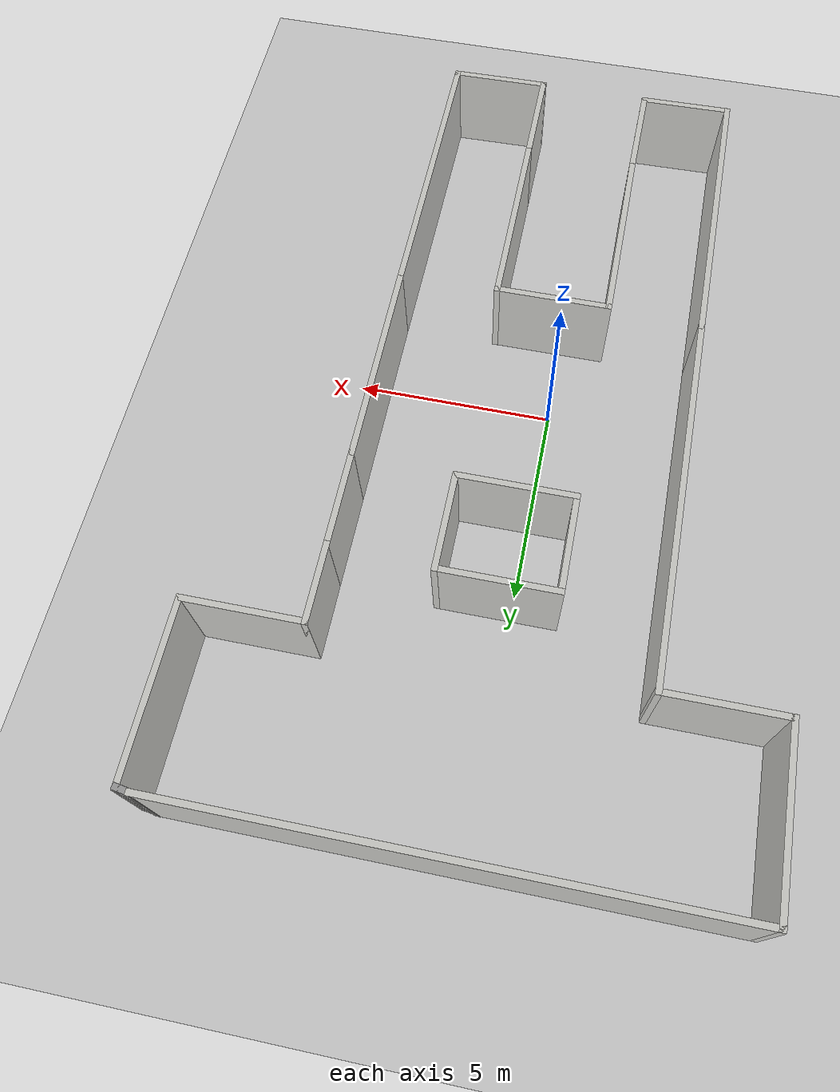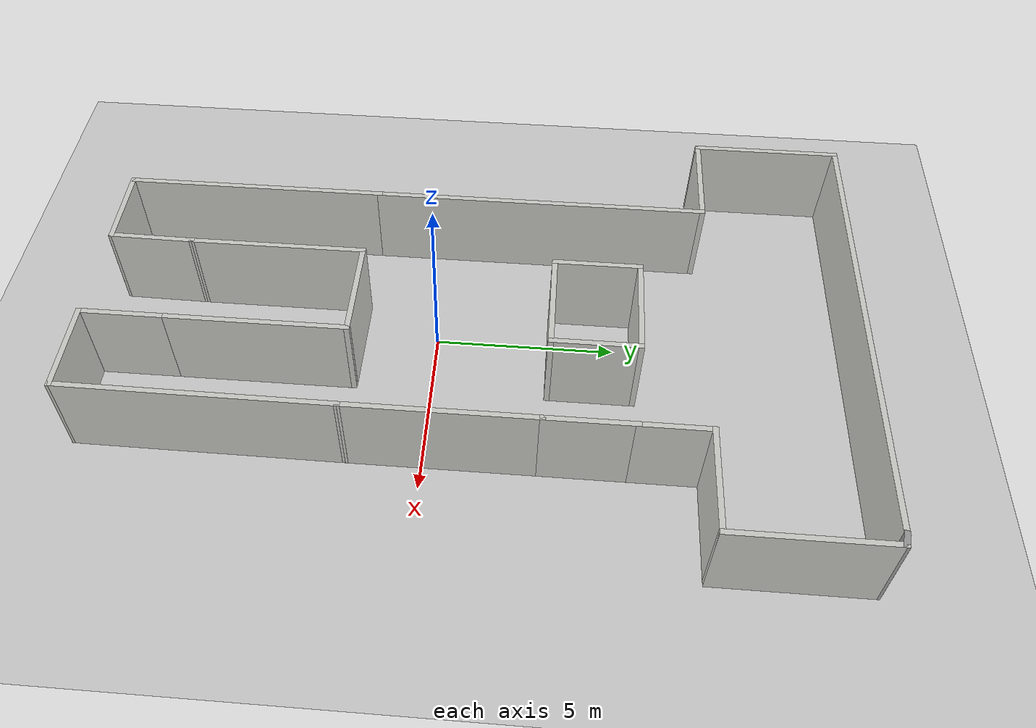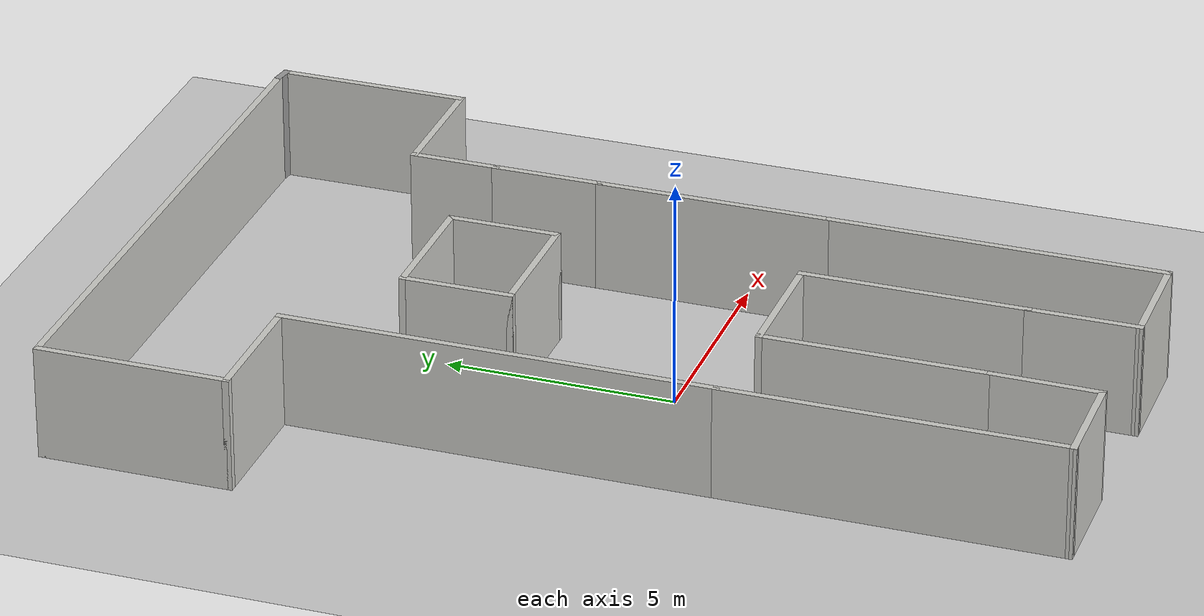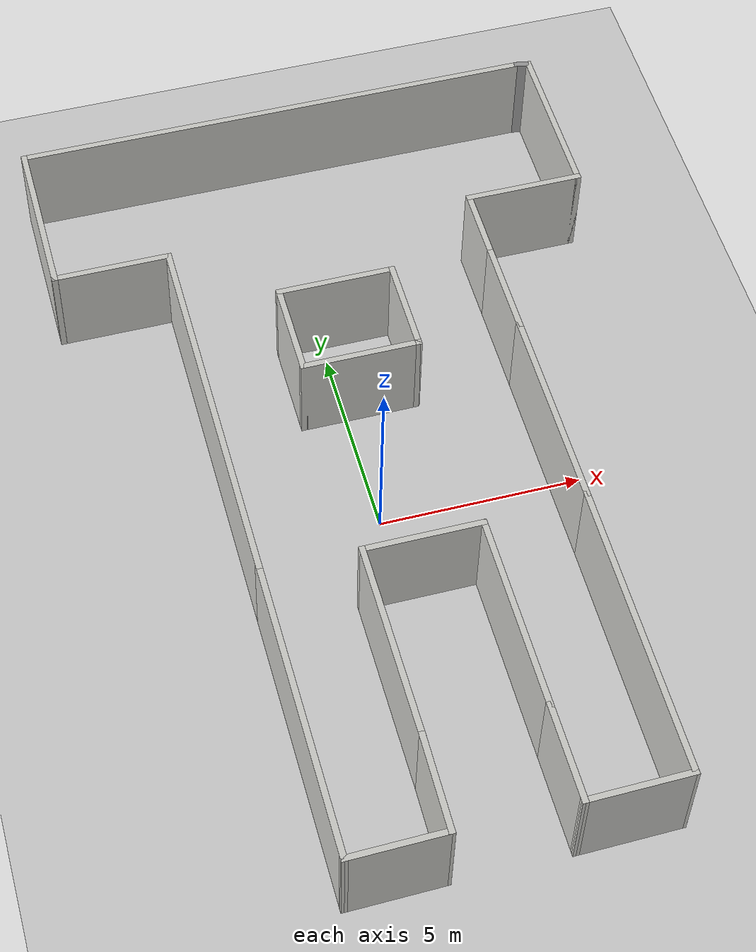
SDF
<sdf version="1.7">
 <world name="default">
  <light name="sun" type="directional">
   <pose>0 0 10 0 -0 0</pose>
   <diffuse>0.8 0.8 0.8 1</diffuse>
   <specular>0.2 0.2 0.2 1</specular>
   <attenuation>
    <range>1000</range>
    <constant>0.9</constant>
    <linear>0.01</linear>
    <quadratic>0.001</quadratic>
   </attenuation>
   <direction>-0.5 0.1 -0.9</direction>
   <spot><inner_angle>0</inner_angle><outer_angle>0</outer_angle><falloff>0</falloff></spot>
  </light>
  <model name="ground_plane">
   <static>1</static>
   <link name="link">
    <collision name="collision">
     <geometry><plane><normal>0 0 1</normal><size>100 100</size></plane></geometry>
     <surface>
      <contact><collide_bitmask>65535</collide_bitmask></contact>
      <friction><ode><mu>100</mu><mu2>50</mu2></ode></friction>
     </surface>
    </collision>
    <visual name="visual">
     <cast_shadows>0</cast_shadows>
     <geometry><plane><normal>0 0 1</normal><size>100 100</size></plane></geometry>
     <material>
      <script><uri>file://media/materials/scripts/gazebo.material</uri><name>Gazebo/Grey</name></script>
     </material>
    </visual>
   </link>
  </model>
  <gravity>0 0 -9.8</gravity>
  <magnetic_field>6e-06 2.3e-05 -4.2e-05</magnetic_field>
  <atmosphere type="adiabatic"/>
  <physics type="ode">
   <max_step_size>0.001</max_step_size>
   <real_time_factor>1</real_time_factor>
   <real_time_update_rate>1000</real_time_update_rate>
  </physics>
  <scene><ambient>0.4 0.4 0.4 1</ambient><background>0.7 0.7 0.7 1</background><shadows>1</shadows></scene>
  <audio><device>default</device></audio>
  <spherical_coordinates>
   <surface_model>EARTH_WGS84</surface_model>
   <latitude_deg>0</latitude_deg>
   <longitude_deg>0</longitude_deg>
   <elevation>0</elevation>
   <heading_deg>0</heading_deg>
  </spherical_coordinates>
  <model name="UPIITA">
   <pose>0.450283 1.05834 0 0 -0 0</pose>
   <link name="Wall_0">
    <collision name="Wall_0_Collision">
     <geometry><box><size>3 0.15 2.5</size></box></geometry>
     <pose>0 0 1.25 0 -0 0</pose>
    </collision>
    <visual name="Wall_0_Visual">
     <pose>0 0 1.25 0 -0 0</pose>
     <geometry><box><size>3 0.15 2.5</size></box></geometry>
     <material>
      <script><uri>file://media/materials/scripts/gazebo.material</uri><name>Gazebo/CeilingTiled</name></script>
      <ambient>1 1 1 1</ambient>
     </material>
     <meta><layer>0</layer></meta>
    </visual>
    <pose>-0.080655 -3.20509 0 0 -0 3.14159</pose>
   </link>
   <link name="Wall_1">
    <collision name="Wall_1_Collision">
     <geometry><box><size>5 0.15 2.5</size></box></geometry>
     <pose>0 0 1.25 0 -0 0</pose>
    </collision>
    <visual name="Wall_1_Visual">
     <pose>0 0 1.25 0 -0 0</pose>
     <geometry><box><size>5 0.15 2.5</size></box></geometry>
     <material>
      <script><uri>file://media/materials/scripts/gazebo.material</uri><name>Gazebo/CeilingTiled</name></script>
      <ambient>1 1 1 1</ambient>
     </material>
     <meta><layer>0</layer></meta>
    </visual>
    <pose>-1.50565 -5.63009 0 0 -0 -1.5708</pose>
   </link>
   <link name="Wall_12">
    <collision name="Wall_12_Collision">
     <geometry><box><size>2.46528 0.15 2.5</size></box></geometry>
     <pose>0 0 1.25 0 -0 0</pose>
    </collision>
    <visual name="Wall_12_Visual">
     <pose>0 0 1.25 0 -0 0</pose>
     <geometry><box><size>2.46528 0.15 2.5</size></box></geometry>
     <material>
      <script><uri>file://media/materials/scripts/gazebo.material</uri><name>Gazebo/CeilingTiled</name></script>
      <ambient>1 1 1 1</ambient>
     </material>
     <meta><layer>0</layer></meta>
    </visual>
    <pose>-2.69814 -10.3876 0 0 -0 -3.12648</pose>
   </link>
   <link name="Wall_13">
    <collision name="Wall_13_Collision">
     <geometry><box><size>7.5 0.15 2.5</size></box></geometry>
     <pose>0 0 1.25 0 -0 0</pose>
    </collision>
    <visual name="Wall_13_Visual">
     <pose>0 0 1.25 0 -0 0</pose>
     <geometry><box><size>7.5 0.15 2.5</size></box></geometry>
     <material>
      <script><uri>file://media/materials/scripts/gazebo.material</uri><name>Gazebo/CeilingTiled</name></script>
      <ambient>1 1 1 1</ambient>
     </material>
     <meta><layer>0</layer></meta>
    </visual>
    <pose>-3.85566 -6.73009 0 0 -0 1.5708</pose>
   </link>
   <link name="Wall_17">
    <collision name="Wall_17_Collision">
     <geometry><box><size>7.4651 0.15 2.5</size></box></geometry>
     <pose>0 0 1.25 0 -0 0</pose>
    </collision>
    <visual name="Wall_17_Visual">
     <pose>0 0 1.25 0 -0 0</pose>
     <geometry><box><size>7.4651 0.15 2.5</size></box></geometry>
     <material>
      <script><uri>file://media/materials/scripts/gazebo.material</uri><name>Gazebo/CeilingTiled</name></script>
      <ambient>1 1 1 1</ambient>
     </material>
     <meta><layer>0</layer></meta>
    </visual>
    <pose>3.82686 -6.7126 0 0 -0 1.56601</pose>
   </link>
   <link name="Wall_23">
    <collision name="Wall_23_Collision">
     <geometry><box><size>3 0.15 2.5</size></box></geometry>
     <pose>0 0 1.25 0 -0 0</pose>
    </collision>
    <visual name="Wall_23_Visual">
     <pose>0 0 1.25 0 -0 0</pose>
     <geometry><box><size>3 0.15 2.5</size></box></geometry>
     <material>
      <script><uri>file://media/materials/scripts/gazebo.material</uri><name>Gazebo/CeilingTiled</name></script>
      <ambient>1 1 1 1</ambient>
     </material>
     <meta><layer>0</layer></meta>
    </visual>
    <pose>-0.080655 2.14491 0 0 -0 0</pose>
   </link>
   <link name="Wall_24">
    <collision name="Wall_24_Collision">
     <geometry><box><size>2.5 0.15 2.5</size></box></geometry>
     <pose>0 0 1.25 0 -0 0</pose>
    </collision>
    <visual name="Wall_24_Visual">
     <pose>0 0 1.25 0 -0 0</pose>
     <geometry><box><size>2.5 0.15 2.5</size></box></geometry>
     <material>
      <script><uri>file://media/materials/scripts/gazebo.material</uri><name>Gazebo/CeilingTiled</name></script>
      <ambient>1 1 1 1</ambient>
     </material>
     <meta><layer>0</layer></meta>
    </visual>
    <pose>1.34434 3.31991 0 0 -0 1.5708</pose>
   </link>
   <link name="Wall_25">
    <collision name="Wall_25_Collision">
     <geometry><box><size>3 0.15 2.5</size></box></geometry>
     <pose>0 0 1.25 0 -0 0</pose>
    </collision>
    <visual name="Wall_25_Visual">
     <pose>0 0 1.25 0 -0 0</pose>
     <geometry><box><size>3 0.15 2.5</size></box></geometry>
     <material>
      <script><uri>file://media/materials/scripts/gazebo.material</uri><name>Gazebo/CeilingTiled</name></script>
      <ambient>1 1 1 1</ambient>
     </material>
     <meta><layer>0</layer></meta>
    </visual>
    <pose>-0.080655 4.49491 0 0 -0 3.14159</pose>
   </link>
   <link name="Wall_26">
    <collision name="Wall_26_Collision">
     <geometry><box><size>2.5 0.15 2.5</size></box></geometry>
     <pose>0 0 1.25 0 -0 0</pose>
    </collision>
    <visual name="Wall_26_Visual">
     <pose>0 0 1.25 0 -0 0</pose>
     <geometry><box><size>2.5 0.15 2.5</size></box></geometry>
     <material>
      <script><uri>file://media/materials/scripts/gazebo.material</uri><name>Gazebo/CeilingTiled</name></script>
      <ambient>1 1 1 1</ambient>
     </material>
     <meta><layer>0</layer></meta>
    </visual>
    <pose>-1.50565 3.31991 0 0 -0 -1.5708</pose>
   </link>
   <link name="Wall_28">
    <collision name="Wall_28_Collision">
     <geometry><box><size>5.25 0.15 2.5</size></box></geometry>
     <pose>0 0 1.25 0 -0 0</pose>
    </collision>
    <visual name="Wall_28_Visual">
     <pose>0 0 1.25 0 -0 0</pose>
     <geometry><box><size>5.25 0.15 2.5</size></box></geometry>
     <material>
      <script><uri>file://media/materials/scripts/gazebo.material</uri><name>Gazebo/CeilingTiled</name></script>
      <ambient>1 1 1 1</ambient>
     </material>
     <meta><layer>0</layer></meta>
    </visual>
    <pose>3.84435 -0.505092 0 0 -0 1.5708</pose>
   </link>
   <link name="Wall_29">
    <collision name="Wall_29_Collision">
     <geometry><box><size>2.5 0.15 2.5</size></box></geometry>
     <pose>0 0 1.25 0 -0 0</pose>
    </collision>
    <visual name="Wall_29_Visual">
     <pose>0 0 1.25 0 -0 0</pose>
     <geometry><box><size>2.5 0.15 2.5</size></box></geometry>
     <material>
      <script><uri>file://media/materials/scripts/gazebo.material</uri><name>Gazebo/CeilingTiled</name></script>
      <ambient>1 1 1 1</ambient>
     </material>
     <meta><layer>0</layer></meta>
    </visual>
    <pose>3.84435 3.21991 0 0 -0 1.5708</pose>
   </link>
   <link name="Wall_3">
    <collision name="Wall_3_Collision">
     <geometry><box><size>5 0.15 2.5</size></box></geometry>
     <pose>0 0 1.25 0 -0 0</pose>
    </collision>
    <visual name="Wall_3_Visual">
     <pose>0 0 1.25 0 -0 0</pose>
     <geometry><box><size>5 0.15 2.5</size></box></geometry>
     <material>
      <script><uri>file://media/materials/scripts/gazebo.material</uri><name>Gazebo/CeilingTiled</name></script>
      <ambient>1 1 1 1</ambient>
     </material>
     <meta><layer>0</layer></meta>
    </visual>
    <pose>1.34434 -5.63009 0 0 -0 1.5708</pose>
   </link>
   <link name="Wall_30">
    <collision name="Wall_30_Collision">
     <geometry><box><size>2 0.15 2.5</size></box></geometry>
     <pose>0 0 1.25 0 -0 0</pose>
    </collision>
    <visual name="Wall_30_Visual">
     <pose>0 0 1.25 0 -0 0</pose>
     <geometry><box><size>2 0.15 2.5</size></box></geometry>
     <material>
      <script><uri>file://media/materials/scripts/gazebo.material</uri><name>Gazebo/CeilingTiled</name></script>
      <ambient>1 1 1 1</ambient>
     </material>
     <meta><layer>0</layer></meta>
    </visual>
    <pose>3.84435 5.31991 0 0 -0 1.5708</pose>
   </link>
   <link name="Wall_31">
    <collision name="Wall_31_Collision">
     <geometry><box><size>3 0.15 2.5</size></box></geometry>
     <pose>0 0 1.25 0 -0 0</pose>
    </collision>
    <visual name="Wall_31_Visual">
     <pose>0 0 1.25 0 -0 0</pose>
     <geometry><box><size>3 0.15 2.5</size></box></geometry>
     <material>
      <script><uri>file://media/materials/scripts/gazebo.material</uri><name>Gazebo/CeilingTiled</name></script>
      <ambient>1 1 1 1</ambient>
     </material>
     <meta><layer>0</layer></meta>
    </visual>
    <pose>5.26935 6.24491 0 0 -0 0</pose>
   </link>
   <link name="Wall_32">
    <collision name="Wall_32_Collision">
     <geometry><box><size>4.25 0.15 2.5</size></box></geometry>
     <pose>0 0 1.25 0 -0 0</pose>
    </collision>
    <visual name="Wall_32_Visual">
     <pose>0 0 1.25 0 -0 0</pose>
     <geometry><box><size>4.25 0.15 2.5</size></box></geometry>
     <material>
      <script><uri>file://media/materials/scripts/gazebo.material</uri><name>Gazebo/CeilingTiled</name></script>
      <ambient>1 1 1 1</ambient>
     </material>
     <meta><layer>0</layer></meta>
    </visual>
    <pose>6.69435 8.29491 0 0 -0 1.5708</pose>
   </link>
   <link name="Wall_34">
    <collision name="Wall_34_Collision">
     <geometry><box><size>9.5 0.15 2.5</size></box></geometry>
     <pose>0 0 1.25 0 -0 0</pose>
    </collision>
    <visual name="Wall_34_Visual">
     <pose>0 0 1.25 0 -0 0</pose>
     <geometry><box><size>9.5 0.15 2.5</size></box></geometry>
     <material>
      <script><uri>file://media/materials/scripts/gazebo.material</uri><name>Gazebo/CeilingTiled</name></script>
      <ambient>1 1 1 1</ambient>
     </material>
     <meta><layer>0</layer></meta>
    </visual>
    <pose>-3.85566 1.61991 0 0 -0 1.5708</pose>
   </link>
   <link name="Wall_35">
    <collision name="Wall_35_Collision">
     <geometry><box><size>3 0.15 2.5</size></box></geometry>
     <pose>0 0 1.25 0 -0 0</pose>
    </collision>
    <visual name="Wall_35_Visual">
     <pose>0 0 1.25 0 -0 0</pose>
     <geometry><box><size>3 0.15 2.5</size></box></geometry>
     <material>
      <script><uri>file://media/materials/scripts/gazebo.material</uri><name>Gazebo/CeilingTiled</name></script>
      <ambient>1 1 1 1</ambient>
     </material>
     <meta><layer>0</layer></meta>
    </visual>
    <pose>-5.28065 6.29491 0 0 -0 3.14159</pose>
   </link>
   <link name="Wall_37">
    <collision name="Wall_37_Collision">
     <geometry><box><size>4.25 0.15 2.5</size></box></geometry>
     <pose>0 0 1.25 0 -0 0</pose>
    </collision>
    <visual name="Wall_37_Visual">
     <pose>0 0 1.25 0 -0 0</pose>
     <geometry><box><size>4.25 0.15 2.5</size></box></geometry>
     <material>
      <script><uri>file://media/materials/scripts/gazebo.material</uri><name>Gazebo/CeilingTiled</name></script>
      <ambient>1 1 1 1</ambient>
     </material>
     <meta><layer>0</layer></meta>
    </visual>
    <pose>-6.70565 8.34491 0 0 -0 1.5708</pose>
   </link>
   <link name="Wall_38">
    <collision name="Wall_38_Collision">
     <geometry><box><size>13.25 0.15 2.5</size></box></geometry>
     <pose>0 0 1.25 0 -0 0</pose>
    </collision>
    <visual name="Wall_38_Visual">
     <pose>0 0 1.25 0 -0 0</pose>
     <geometry><box><size>13.25 0.15 2.5</size></box></geometry>
     <material>
      <script><uri>file://media/materials/scripts/gazebo.material</uri><name>Gazebo/CeilingTiled</name></script>
      <ambient>1 1 1 1</ambient>
     </material>
     <meta><layer>0</layer></meta>
    </visual>
    <pose>-0.155654 10.3949 0 0 -0 0</pose>
   </link>
   <link name="Wall_39">
    <collision name="Wall_39_Collision">
     <geometry><box><size>0.454138 0.15 2.5</size></box></geometry>
     <pose>0 0 1.25 0 -0 0</pose>
    </collision>
    <visual name="Wall_39_Visual">
     <pose>0 0 1.25 0 -0 0</pose>
     <geometry><box><size>0.454138 0.15 2.5</size></box></geometry>
     <material>
      <script><uri>file://media/materials/scripts/gazebo.material</uri><name>Gazebo/Grey</name></script>
      <ambient>1 1 1 1</ambient>
     </material>
     <meta><layer>0</layer></meta>
    </visual>
    <pose>6.54434 10.3699 0 0 -0 -0.165149</pose>
   </link>
   <link name="Wall_41">
    <collision name="Wall_41_Collision">
     <geometry><box><size>2.46528 0.15 2.5</size></box></geometry>
     <pose>0 0 1.25 0 -0 0</pose>
    </collision>
    <visual name="Wall_41_Visual">
     <pose>0 0 1.25 0 -0 0</pose>
     <geometry><box><size>2.46528 0.15 2.5</size></box></geometry>
     <material>
      <script><uri>file://media/materials/scripts/gazebo.material</uri><name>Gazebo/CeilingTiled</name></script>
      <ambient>1 1 1 1</ambient>
     </material>
     <meta><layer>0</layer></meta>
    </visual>
    <pose>-1.52314 -9.2126 0 0 -0 -1.5859</pose>
   </link>
   <link name="Wall_43">
    <collision name="Wall_43_Collision">
     <geometry><box><size>2.5 0.15 2.5</size></box></geometry>
     <pose>0 0 1.25 0 -0 0</pose>
    </collision>
    <visual name="Wall_43_Visual">
     <pose>0 0 1.25 0 -0 0</pose>
     <geometry><box><size>2.5 0.15 2.5</size></box></geometry>
     <material>
      <script><uri>file://media/materials/scripts/gazebo.material</uri><name>Gazebo/CeilingTiled</name></script>
      <ambient>1 1 1 1</ambient>
     </material>
     <meta><layer>0</layer></meta>
    </visual>
    <pose>1.34434 -9.23009 0 0 -0 -1.5708</pose>
   </link>
   <link name="Wall_45">
    <collision name="Wall_45_Collision">
     <geometry><box><size>2.61527 0.15 2.5</size></box></geometry>
     <pose>0 0 1.25 0 -0 0</pose>
    </collision>
    <visual name="Wall_45_Visual">
     <pose>0 0 1.25 0 -0 0</pose>
     <geometry><box><size>2.61527 0.15 2.5</size></box></geometry>
     <material>
      <script><uri>file://media/materials/scripts/gazebo.material</uri><name>Gazebo/CeilingTiled</name></script>
      <ambient>1 1 1 1</ambient>
     </material>
     <meta><layer>0</layer></meta>
    </visual>
    <pose>2.57686 -10.3876 0 0 -0 0.01419</pose>
   </link>
   <static>1</static>
  </model>
 </world>
</sdf>
